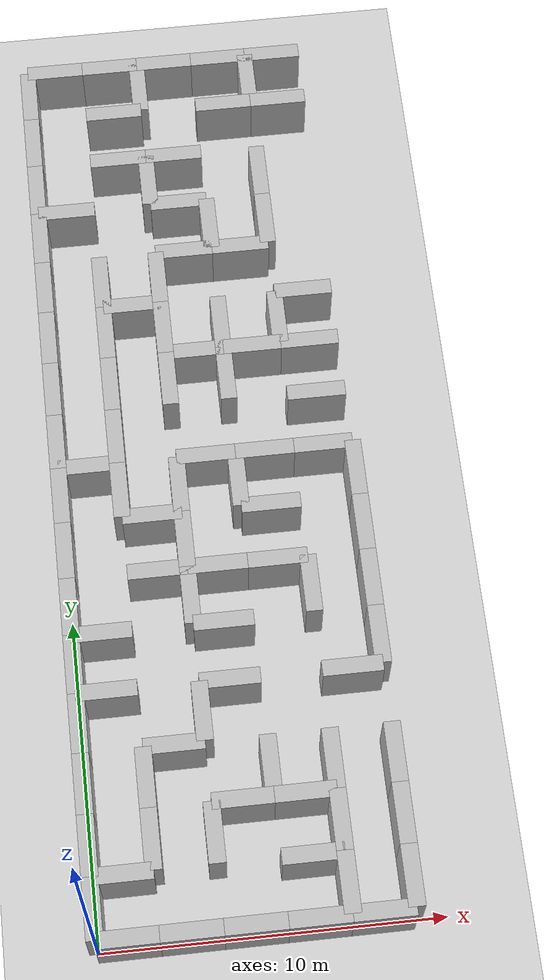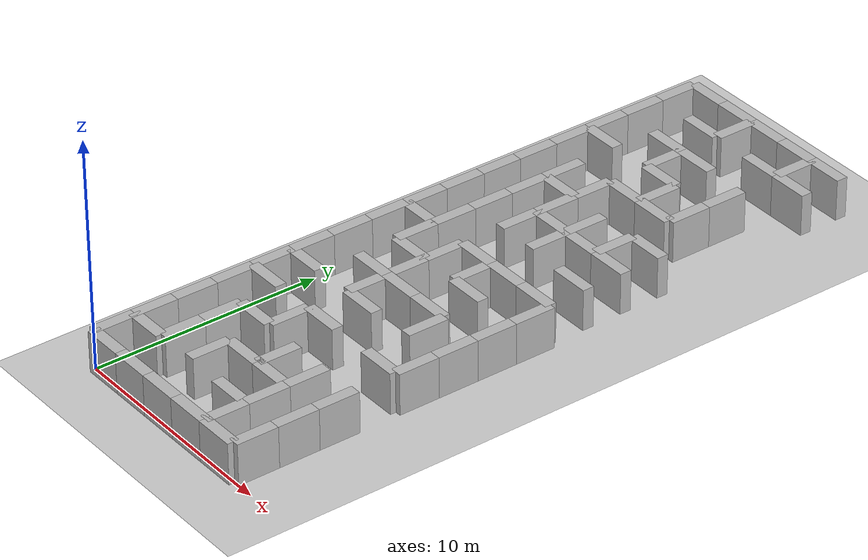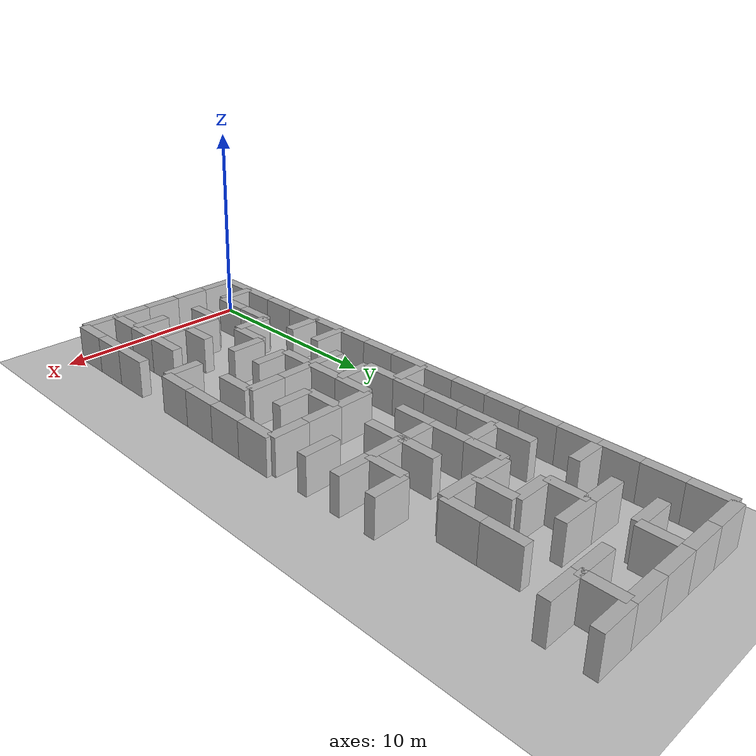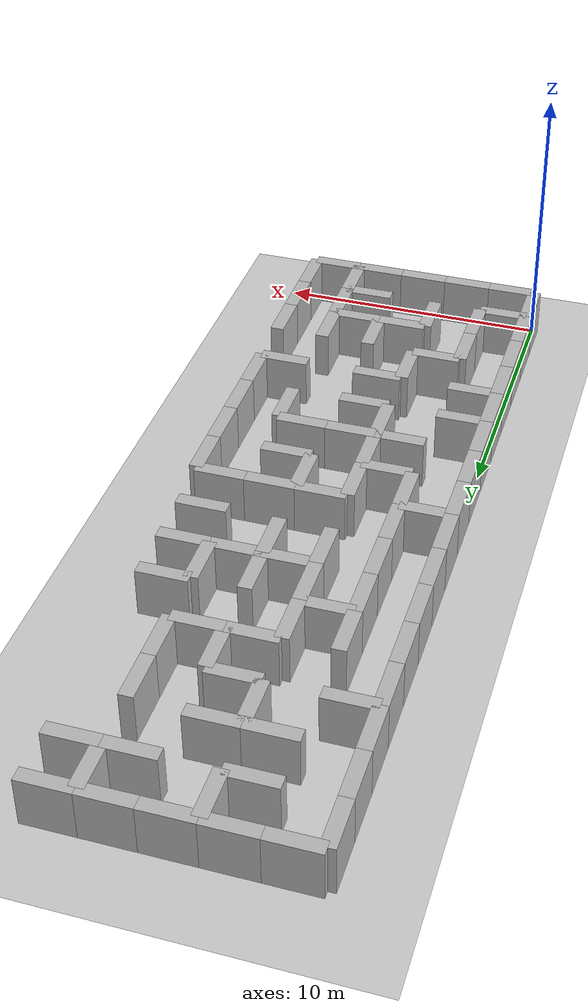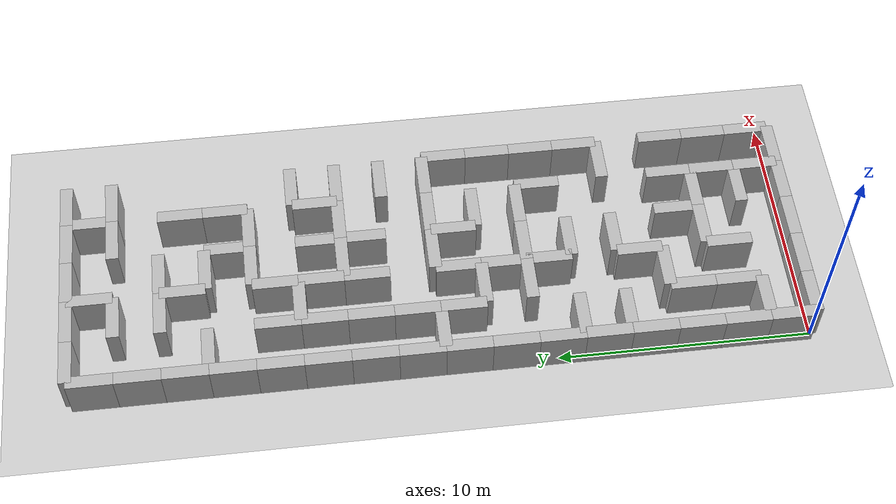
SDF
<sdf version="1.6">
 <world name="default">
  <model name="ground_plane">
   <static>1</static>
   <link name="link">
    <collision name="collision">
     <geometry><plane><normal>0 0 1</normal><size>100 100</size></plane></geometry>
     <surface><friction><ode><mu>100</mu><mu2>50</mu2></ode></friction></surface>
    </collision>
    <visual name="visual">
     <cast_shadows>0</cast_shadows>
     <geometry><plane><normal>0 0 1</normal><size>100 100</size></plane></geometry>
     <material>
      <script><uri>file://media/materials/scripts/gazebo.material</uri><name>Gazebo/Grey</name></script>
     </material>
    </visual>
   </link>
  </model>
  <model name="labyrinth_wall0">
   <pose>0.900000 0.000000 0.9 0 0 0.000000</pose>
   <link name="link">
    <inertial><mass>3.0</mass></inertial>
    <collision name="collision"><geometry><box><size>1.8 0.5 1.8</size></box></geometry></collision>
    <visual name="visual"><geometry><box><size>1.8 0.5 1.8</size></box></geometry></visual>
   </link>
   <static>true</static>
  </model>
  <model name="labyrinth_wall2">
   <pose>0.000000 0.900000 0.9 0 0 1.570796</pose>
   <link name="link">
    <inertial><mass>3.0</mass></inertial>
    <collision name="collision"><geometry><box><size>1.8 0.5 1.8</size></box></geometry></collision>
    <visual name="visual"><geometry><box><size>1.8 0.5 1.8</size></box></geometry></visual>
   </link>
   <static>true</static>
  </model>
  <model name="labyrinth_wall3">
   <pose>2.700000 0.000000 0.9 0 0 0.000000</pose>
   <link name="link">
    <inertial><mass>3.0</mass></inertial>
    <collision name="collision"><geometry><box><size>1.8 0.5 1.8</size></box></geometry></collision>
    <visual name="visual"><geometry><box><size>1.8 0.5 1.8</size></box></geometry></visual>
   </link>
   <static>true</static>
  </model>
  <model name="labyrinth_wall5">
   <pose>4.500000 0.000000 0.9 0 0 0.000000</pose>
   <link name="link">
    <inertial><mass>3.0</mass></inertial>
    <collision name="collision"><geometry><box><size>1.8 0.5 1.8</size></box></geometry></collision>
    <visual name="visual"><geometry><box><size>1.8 0.5 1.8</size></box></geometry></visual>
   </link>
   <static>true</static>
  </model>
  <model name="labyrinth_wall7">
   <pose>6.300000 0.000000 0.9 0 0 0.000000</pose>
   <link name="link">
    <inertial><mass>3.0</mass></inertial>
    <collision name="collision"><geometry><box><size>1.8 0.5 1.8</size></box></geometry></collision>
    <visual name="visual"><geometry><box><size>1.8 0.5 1.8</size></box></geometry></visual>
   </link>
   <static>true</static>
  </model>
  <model name="labyrinth_wall8">
   <pose>7.200000 0.900000 0.9 0 0 1.570796</pose>
   <link name="link">
    <inertial><mass>3.0</mass></inertial>
    <collision name="collision"><geometry><box><size>1.8 0.5 1.8</size></box></geometry></collision>
    <visual name="visual"><geometry><box><size>1.8 0.5 1.8</size></box></geometry></visual>
   </link>
   <static>true</static>
  </model>
  <model name="labyrinth_wall9">
   <pose>8.100000 0.000000 0.9 0 0 0.000000</pose>
   <link name="link">
    <inertial><mass>3.0</mass></inertial>
    <collision name="collision"><geometry><box><size>1.8 0.5 1.8</size></box></geometry></collision>
    <visual name="visual"><geometry><box><size>1.8 0.5 1.8</size></box></geometry></visual>
   </link>
   <static>true</static>
  </model>
  <model name="labyrinth_wall10">
   <pose>9.000000 0.900000 0.9 0 0 1.570796</pose>
   <link name="link">
    <inertial><mass>3.0</mass></inertial>
    <collision name="collision"><geometry><box><size>1.8 0.5 1.8</size></box></geometry></collision>
    <visual name="visual"><geometry><box><size>1.8 0.5 1.8</size></box></geometry></visual>
   </link>
   <static>true</static>
  </model>
  <model name="labyrinth_wall33">
   <pose>0.900000 1.800000 0.9 0 0 0.000000</pose>
   <link name="link">
    <inertial><mass>3.0</mass></inertial>
    <collision name="collision"><geometry><box><size>1.8 0.5 1.8</size></box></geometry></collision>
    <visual name="visual"><geometry><box><size>1.8 0.5 1.8</size></box></geometry></visual>
   </link>
   <static>true</static>
  </model>
  <model name="labyrinth_wall34">
   <pose>1.800000 2.700000 0.9 0 0 1.570796</pose>
   <link name="link">
    <inertial><mass>3.0</mass></inertial>
    <collision name="collision"><geometry><box><size>1.8 0.5 1.8</size></box></geometry></collision>
    <visual name="visual"><geometry><box><size>1.8 0.5 1.8</size></box></geometry></visual>
   </link>
   <static>true</static>
  </model>
  <model name="labyrinth_wall35">
   <pose>0.000000 2.700000 0.9 0 0 1.570796</pose>
   <link name="link">
    <inertial><mass>3.0</mass></inertial>
    <collision name="collision"><geometry><box><size>1.8 0.5 1.8</size></box></geometry></collision>
    <visual name="visual"><geometry><box><size>1.8 0.5 1.8</size></box></geometry></visual>
   </link>
   <static>true</static>
  </model>
  <model name="labyrinth_wall37">
   <pose>3.600000 2.700000 0.9 0 0 1.570796</pose>
   <link name="link">
    <inertial><mass>3.0</mass></inertial>
    <collision name="collision"><geometry><box><size>1.8 0.5 1.8</size></box></geometry></collision>
    <visual name="visual"><geometry><box><size>1.8 0.5 1.8</size></box></geometry></visual>
   </link>
   <static>true</static>
  </model>
  <model name="labyrinth_wall40">
   <pose>6.300000 1.800000 0.9 0 0 0.000000</pose>
   <link name="link">
    <inertial><mass>3.0</mass></inertial>
    <collision name="collision"><geometry><box><size>1.8 0.5 1.8</size></box></geometry></collision>
    <visual name="visual"><geometry><box><size>1.8 0.5 1.8</size></box></geometry></visual>
   </link>
   <static>true</static>
  </model>
  <model name="labyrinth_wall41">
   <pose>7.200000 2.700000 0.9 0 0 1.570796</pose>
   <link name="link">
    <inertial><mass>3.0</mass></inertial>
    <collision name="collision"><geometry><box><size>1.8 0.5 1.8</size></box></geometry></collision>
    <visual name="visual"><geometry><box><size>1.8 0.5 1.8</size></box></geometry></visual>
   </link>
   <static>true</static>
  </model>
  <model name="labyrinth_wall43">
   <pose>9.000000 2.700000 0.9 0 0 1.570796</pose>
   <link name="link">
    <inertial><mass>3.0</mass></inertial>
    <collision name="collision"><geometry><box><size>1.8 0.5 1.8</size></box></geometry></collision>
    <visual name="visual"><geometry><box><size>1.8 0.5 1.8</size></box></geometry></visual>
   </link>
   <static>true</static>
  </model>
  <model name="labyrinth_wall67">
   <pose>1.800000 4.500000 0.9 0 0 1.570796</pose>
   <link name="link">
    <inertial><mass>3.0</mass></inertial>
    <collision name="collision"><geometry><box><size>1.8 0.5 1.8</size></box></geometry></collision>
    <visual name="visual"><geometry><box><size>1.8 0.5 1.8</size></box></geometry></visual>
   </link>
   <static>true</static>
  </model>
  <model name="labyrinth_wall68">
   <pose>0.000000 4.500000 0.9 0 0 1.570796</pose>
   <link name="link">
    <inertial><mass>3.0</mass></inertial>
    <collision name="collision"><geometry><box><size>1.8 0.5 1.8</size></box></geometry></collision>
    <visual name="visual"><geometry><box><size>1.8 0.5 1.8</size></box></geometry></visual>
   </link>
   <static>true</static>
  </model>
  <model name="labyrinth_wall71">
   <pose>4.500000 3.600000 0.9 0 0 0.000000</pose>
   <link name="link">
    <inertial><mass>3.0</mass></inertial>
    <collision name="collision"><geometry><box><size>1.8 0.5 1.8</size></box></geometry></collision>
    <visual name="visual"><geometry><box><size>1.8 0.5 1.8</size></box></geometry></visual>
   </link>
   <static>true</static>
  </model>
  <model name="labyrinth_wall72">
   <pose>5.400000 4.500000 0.9 0 0 1.570796</pose>
   <link name="link">
    <inertial><mass>3.0</mass></inertial>
    <collision name="collision"><geometry><box><size>1.8 0.5 1.8</size></box></geometry></collision>
    <visual name="visual"><geometry><box><size>1.8 0.5 1.8</size></box></geometry></visual>
   </link>
   <static>true</static>
  </model>
  <model name="labyrinth_wall73">
   <pose>6.300000 3.600000 0.9 0 0 0.000000</pose>
   <link name="link">
    <inertial><mass>3.0</mass></inertial>
    <collision name="collision"><geometry><box><size>1.8 0.5 1.8</size></box></geometry></collision>
    <visual name="visual"><geometry><box><size>1.8 0.5 1.8</size></box></geometry></visual>
   </link>
   <static>true</static>
  </model>
  <model name="labyrinth_wall74">
   <pose>7.200000 4.500000 0.9 0 0 1.570796</pose>
   <link name="link">
    <inertial><mass>3.0</mass></inertial>
    <collision name="collision"><geometry><box><size>1.8 0.5 1.8</size></box></geometry></collision>
    <visual name="visual"><geometry><box><size>1.8 0.5 1.8</size></box></geometry></visual>
   </link>
   <static>true</static>
  </model>
  <model name="labyrinth_wall76">
   <pose>9.000000 4.500000 0.9 0 0 1.570796</pose>
   <link name="link">
    <inertial><mass>3.0</mass></inertial>
    <collision name="collision"><geometry><box><size>1.8 0.5 1.8</size></box></geometry></collision>
    <visual name="visual"><geometry><box><size>1.8 0.5 1.8</size></box></geometry></visual>
   </link>
   <static>true</static>
  </model>
  <model name="labyrinth_wall101">
   <pose>0.000000 6.300000 0.9 0 0 1.570796</pose>
   <link name="link">
    <inertial><mass>3.0</mass></inertial>
    <collision name="collision"><geometry><box><size>1.8 0.5 1.8</size></box></geometry></collision>
    <visual name="visual"><geometry><box><size>1.8 0.5 1.8</size></box></geometry></visual>
   </link>
   <static>true</static>
  </model>
  <model name="labyrinth_wall102">
   <pose>2.700000 5.400000 0.9 0 0 0.000000</pose>
   <link name="link">
    <inertial><mass>3.0</mass></inertial>
    <collision name="collision"><geometry><box><size>1.8 0.5 1.8</size></box></geometry></collision>
    <visual name="visual"><geometry><box><size>1.8 0.5 1.8</size></box></geometry></visual>
   </link>
   <static>true</static>
  </model>
  <model name="labyrinth_wall103">
   <pose>3.600000 6.300000 0.9 0 0 1.570796</pose>
   <link name="link">
    <inertial><mass>3.0</mass></inertial>
    <collision name="collision"><geometry><box><size>1.8 0.5 1.8</size></box></geometry></collision>
    <visual name="visual"><geometry><box><size>1.8 0.5 1.8</size></box></geometry></visual>
   </link>
   <static>true</static>
  </model>
  <model name="labyrinth_wall132">
   <pose>0.900000 7.200000 0.9 0 0 0.000000</pose>
   <link name="link">
    <inertial><mass>3.0</mass></inertial>
    <collision name="collision"><geometry><box><size>1.8 0.5 1.8</size></box></geometry></collision>
    <visual name="visual"><geometry><box><size>1.8 0.5 1.8</size></box></geometry></visual>
   </link>
   <static>true</static>
  </model>
  <model name="labyrinth_wall134">
   <pose>0.000000 8.100000 0.9 0 0 1.570796</pose>
   <link name="link">
    <inertial><mass>3.0</mass></inertial>
    <collision name="collision"><geometry><box><size>1.8 0.5 1.8</size></box></geometry></collision>
    <visual name="visual"><geometry><box><size>1.8 0.5 1.8</size></box></geometry></visual>
   </link>
   <static>true</static>
  </model>
  <model name="labyrinth_wall137">
   <pose>4.500000 7.200000 0.9 0 0 0.000000</pose>
   <link name="link">
    <inertial><mass>3.0</mass></inertial>
    <collision name="collision"><geometry><box><size>1.8 0.5 1.8</size></box></geometry></collision>
    <visual name="visual"><geometry><box><size>1.8 0.5 1.8</size></box></geometry></visual>
   </link>
   <static>true</static>
  </model>
  <model name="labyrinth_wall141">
   <pose>8.100000 7.200000 0.9 0 0 0.000000</pose>
   <link name="link">
    <inertial><mass>3.0</mass></inertial>
    <collision name="collision"><geometry><box><size>1.8 0.5 1.8</size></box></geometry></collision>
    <visual name="visual"><geometry><box><size>1.8 0.5 1.8</size></box></geometry></visual>
   </link>
   <static>true</static>
  </model>
  <model name="labyrinth_wall142">
   <pose>9.000000 8.100000 0.9 0 0 1.570796</pose>
   <link name="link">
    <inertial><mass>3.0</mass></inertial>
    <collision name="collision"><geometry><box><size>1.8 0.5 1.8</size></box></geometry></collision>
    <visual name="visual"><geometry><box><size>1.8 0.5 1.8</size></box></geometry></visual>
   </link>
   <static>true</static>
  </model>
  <model name="labyrinth_wall165">
   <pose>0.900000 9.000000 0.9 0 0 0.000000</pose>
   <link name="link">
    <inertial><mass>3.0</mass></inertial>
    <collision name="collision"><geometry><box><size>1.8 0.5 1.8</size></box></geometry></collision>
    <visual name="visual"><geometry><box><size>1.8 0.5 1.8</size></box></geometry></visual>
   </link>
   <static>true</static>
  </model>
  <model name="labyrinth_wall167">
   <pose>0.000000 9.900000 0.9 0 0 1.570796</pose>
   <link name="link">
    <inertial><mass>3.0</mass></inertial>
    <collision name="collision"><geometry><box><size>1.8 0.5 1.8</size></box></geometry></collision>
    <visual name="visual"><geometry><box><size>1.8 0.5 1.8</size></box></geometry></visual>
   </link>
   <static>true</static>
  </model>
  <model name="labyrinth_wall169">
   <pose>3.600000 9.900000 0.9 0 0 1.570796</pose>
   <link name="link">
    <inertial><mass>3.0</mass></inertial>
    <collision name="collision"><geometry><box><size>1.8 0.5 1.8</size></box></geometry></collision>
    <visual name="visual"><geometry><box><size>1.8 0.5 1.8</size></box></geometry></visual>
   </link>
   <static>true</static>
  </model>
  <model name="labyrinth_wall170">
   <pose>4.500000 9.000000 0.9 0 0 0.000000</pose>
   <link name="link">
    <inertial><mass>3.0</mass></inertial>
    <collision name="collision"><geometry><box><size>1.8 0.5 1.8</size></box></geometry></collision>
    <visual name="visual"><geometry><box><size>1.8 0.5 1.8</size></box></geometry></visual>
   </link>
   <static>true</static>
  </model>
  <model name="labyrinth_wall173">
   <pose>7.200000 9.900000 0.9 0 0 1.570796</pose>
   <link name="link">
    <inertial><mass>3.0</mass></inertial>
    <collision name="collision"><geometry><box><size>1.8 0.5 1.8</size></box></geometry></collision>
    <visual name="visual"><geometry><box><size>1.8 0.5 1.8</size></box></geometry></visual>
   </link>
   <static>true</static>
  </model>
  <model name="labyrinth_wall175">
   <pose>9.000000 9.900000 0.9 0 0 1.570796</pose>
   <link name="link">
    <inertial><mass>3.0</mass></inertial>
    <collision name="collision"><geometry><box><size>1.8 0.5 1.8</size></box></geometry></collision>
    <visual name="visual"><geometry><box><size>1.8 0.5 1.8</size></box></geometry></visual>
   </link>
   <static>true</static>
  </model>
  <model name="labyrinth_wall200">
   <pose>0.000000 11.700000 0.9 0 0 1.570796</pose>
   <link name="link">
    <inertial><mass>3.0</mass></inertial>
    <collision name="collision"><geometry><box><size>1.8 0.5 1.8</size></box></geometry></collision>
    <visual name="visual"><geometry><box><size>1.8 0.5 1.8</size></box></geometry></visual>
   </link>
   <static>true</static>
  </model>
  <model name="labyrinth_wall201">
   <pose>2.700000 10.800000 0.9 0 0 0.000000</pose>
   <link name="link">
    <inertial><mass>3.0</mass></inertial>
    <collision name="collision"><geometry><box><size>1.8 0.5 1.8</size></box></geometry></collision>
    <visual name="visual"><geometry><box><size>1.8 0.5 1.8</size></box></geometry></visual>
   </link>
   <static>true</static>
  </model>
  <model name="labyrinth_wall202">
   <pose>3.600000 11.700000 0.9 0 0 1.570796</pose>
   <link name="link">
    <inertial><mass>3.0</mass></inertial>
    <collision name="collision"><geometry><box><size>1.8 0.5 1.8</size></box></geometry></collision>
    <visual name="visual"><geometry><box><size>1.8 0.5 1.8</size></box></geometry></visual>
   </link>
   <static>true</static>
  </model>
  <model name="labyrinth_wall203">
   <pose>4.500000 10.800000 0.9 0 0 0.000000</pose>
   <link name="link">
    <inertial><mass>3.0</mass></inertial>
    <collision name="collision"><geometry><box><size>1.8 0.5 1.8</size></box></geometry></collision>
    <visual name="visual"><geometry><box><size>1.8 0.5 1.8</size></box></geometry></visual>
   </link>
   <static>true</static>
  </model>
  <model name="labyrinth_wall205">
   <pose>6.300000 10.800000 0.9 0 0 0.000000</pose>
   <link name="link">
    <inertial><mass>3.0</mass></inertial>
    <collision name="collision"><geometry><box><size>1.8 0.5 1.8</size></box></geometry></collision>
    <visual name="visual"><geometry><box><size>1.8 0.5 1.8</size></box></geometry></visual>
   </link>
   <static>true</static>
  </model>
  <model name="labyrinth_wall208">
   <pose>9.000000 11.700000 0.9 0 0 1.570796</pose>
   <link name="link">
    <inertial><mass>3.0</mass></inertial>
    <collision name="collision"><geometry><box><size>1.8 0.5 1.8</size></box></geometry></collision>
    <visual name="visual"><geometry><box><size>1.8 0.5 1.8</size></box></geometry></visual>
   </link>
   <static>true</static>
  </model>
  <model name="labyrinth_wall232">
   <pose>1.800000 13.500000 0.9 0 0 1.570796</pose>
   <link name="link">
    <inertial><mass>3.0</mass></inertial>
    <collision name="collision"><geometry><box><size>1.8 0.5 1.8</size></box></geometry></collision>
    <visual name="visual"><geometry><box><size>1.8 0.5 1.8</size></box></geometry></visual>
   </link>
   <static>true</static>
  </model>
  <model name="labyrinth_wall233">
   <pose>0.000000 13.500000 0.9 0 0 1.570796</pose>
   <link name="link">
    <inertial><mass>3.0</mass></inertial>
    <collision name="collision"><geometry><box><size>1.8 0.5 1.8</size></box></geometry></collision>
    <visual name="visual"><geometry><box><size>1.8 0.5 1.8</size></box></geometry></visual>
   </link>
   <static>true</static>
  </model>
  <model name="labyrinth_wall234">
   <pose>2.700000 12.600000 0.9 0 0 0.000000</pose>
   <link name="link">
    <inertial><mass>3.0</mass></inertial>
    <collision name="collision"><geometry><box><size>1.8 0.5 1.8</size></box></geometry></collision>
    <visual name="visual"><geometry><box><size>1.8 0.5 1.8</size></box></geometry></visual>
   </link>
   <static>true</static>
  </model>
  <model name="labyrinth_wall235">
   <pose>3.600000 13.500000 0.9 0 0 1.570796</pose>
   <link name="link">
    <inertial><mass>3.0</mass></inertial>
    <collision name="collision"><geometry><box><size>1.8 0.5 1.8</size></box></geometry></collision>
    <visual name="visual"><geometry><box><size>1.8 0.5 1.8</size></box></geometry></visual>
   </link>
   <static>true</static>
  </model>
  <model name="labyrinth_wall237">
   <pose>5.400000 13.500000 0.9 0 0 1.570796</pose>
   <link name="link">
    <inertial><mass>3.0</mass></inertial>
    <collision name="collision"><geometry><box><size>1.8 0.5 1.8</size></box></geometry></collision>
    <visual name="visual"><geometry><box><size>1.8 0.5 1.8</size></box></geometry></visual>
   </link>
   <static>true</static>
  </model>
  <model name="labyrinth_wall238">
   <pose>6.300000 12.600000 0.9 0 0 0.000000</pose>
   <link name="link">
    <inertial><mass>3.0</mass></inertial>
    <collision name="collision"><geometry><box><size>1.8 0.5 1.8</size></box></geometry></collision>
    <visual name="visual"><geometry><box><size>1.8 0.5 1.8</size></box></geometry></visual>
   </link>
   <static>true</static>
  </model>
  <model name="labyrinth_wall241">
   <pose>9.000000 13.500000 0.9 0 0 1.570796</pose>
   <link name="link">
    <inertial><mass>3.0</mass></inertial>
    <collision name="collision"><geometry><box><size>1.8 0.5 1.8</size></box></geometry></collision>
    <visual name="visual"><geometry><box><size>1.8 0.5 1.8</size></box></geometry></visual>
   </link>
   <static>true</static>
  </model>
  <model name="labyrinth_wall264">
   <pose>0.900000 14.400000 0.9 0 0 0.000000</pose>
   <link name="link">
    <inertial><mass>3.0</mass></inertial>
    <collision name="collision"><geometry><box><size>1.8 0.5 1.8</size></box></geometry></collision>
    <visual name="visual"><geometry><box><size>1.8 0.5 1.8</size></box></geometry></visual>
   </link>
   <static>true</static>
  </model>
  <model name="labyrinth_wall265">
   <pose>1.800000 15.300000 0.9 0 0 1.570796</pose>
   <link name="link">
    <inertial><mass>3.0</mass></inertial>
    <collision name="collision"><geometry><box><size>1.8 0.5 1.8</size></box></geometry></collision>
    <visual name="visual"><geometry><box><size>1.8 0.5 1.8</size></box></geometry></visual>
   </link>
   <static>true</static>
  </model>
  <model name="labyrinth_wall266">
   <pose>0.000000 15.300000 0.9 0 0 1.570796</pose>
   <link name="link">
    <inertial><mass>3.0</mass></inertial>
    <collision name="collision"><geometry><box><size>1.8 0.5 1.8</size></box></geometry></collision>
    <visual name="visual"><geometry><box><size>1.8 0.5 1.8</size></box></geometry></visual>
   </link>
   <static>true</static>
  </model>
  <model name="labyrinth_wall269">
   <pose>4.500000 14.400000 0.9 0 0 0.000000</pose>
   <link name="link">
    <inertial><mass>3.0</mass></inertial>
    <collision name="collision"><geometry><box><size>1.8 0.5 1.8</size></box></geometry></collision>
    <visual name="visual"><geometry><box><size>1.8 0.5 1.8</size></box></geometry></visual>
   </link>
   <static>true</static>
  </model>
  <model name="labyrinth_wall271">
   <pose>6.300000 14.400000 0.9 0 0 0.000000</pose>
   <link name="link">
    <inertial><mass>3.0</mass></inertial>
    <collision name="collision"><geometry><box><size>1.8 0.5 1.8</size></box></geometry></collision>
    <visual name="visual"><geometry><box><size>1.8 0.5 1.8</size></box></geometry></visual>
   </link>
   <static>true</static>
  </model>
  <model name="labyrinth_wall273">
   <pose>8.100000 14.400000 0.9 0 0 0.000000</pose>
   <link name="link">
    <inertial><mass>3.0</mass></inertial>
    <collision name="collision"><geometry><box><size>1.8 0.5 1.8</size></box></geometry></collision>
    <visual name="visual"><geometry><box><size>1.8 0.5 1.8</size></box></geometry></visual>
   </link>
   <static>true</static>
  </model>
  <model name="labyrinth_wall298">
   <pose>1.800000 17.100000 0.9 0 0 1.570796</pose>
   <link name="link">
    <inertial><mass>3.0</mass></inertial>
    <collision name="collision"><geometry><box><size>1.8 0.5 1.8</size></box></geometry></collision>
    <visual name="visual"><geometry><box><size>1.8 0.5 1.8</size></box></geometry></visual>
   </link>
   <static>true</static>
  </model>
  <model name="labyrinth_wall299">
   <pose>0.000000 17.100000 0.9 0 0 1.570796</pose>
   <link name="link">
    <inertial><mass>3.0</mass></inertial>
    <collision name="collision"><geometry><box><size>1.8 0.5 1.8</size></box></geometry></collision>
    <visual name="visual"><geometry><box><size>1.8 0.5 1.8</size></box></geometry></visual>
   </link>
   <static>true</static>
  </model>
  <model name="labyrinth_wall301">
   <pose>3.600000 17.100000 0.9 0 0 1.570796</pose>
   <link name="link">
    <inertial><mass>3.0</mass></inertial>
    <collision name="collision"><geometry><box><size>1.8 0.5 1.8</size></box></geometry></collision>
    <visual name="visual"><geometry><box><size>1.8 0.5 1.8</size></box></geometry></visual>
   </link>
   <static>true</static>
  </model>
  <model name="labyrinth_wall303">
   <pose>5.400000 17.100000 0.9 0 0 1.570796</pose>
   <link name="link">
    <inertial><mass>3.0</mass></inertial>
    <collision name="collision"><geometry><box><size>1.8 0.5 1.8</size></box></geometry></collision>
    <visual name="visual"><geometry><box><size>1.8 0.5 1.8</size></box></geometry></visual>
   </link>
   <static>true</static>
  </model>
  <model name="labyrinth_wall306">
   <pose>8.100000 16.200001 0.9 0 0 0.000000</pose>
   <link name="link">
    <inertial><mass>3.0</mass></inertial>
    <collision name="collision"><geometry><box><size>1.8 0.5 1.8</size></box></geometry></collision>
    <visual name="visual"><geometry><box><size>1.8 0.5 1.8</size></box></geometry></visual>
   </link>
   <static>true</static>
  </model>
  <model name="labyrinth_wall331">
   <pose>1.800000 18.900000 0.9 0 0 1.570796</pose>
   <link name="link">
    <inertial><mass>3.0</mass></inertial>
    <collision name="collision"><geometry><box><size>1.8 0.5 1.8</size></box></geometry></collision>
    <visual name="visual"><geometry><box><size>1.8 0.5 1.8</size></box></geometry></visual>
   </link>
   <static>true</static>
  </model>
  <model name="labyrinth_wall332">
   <pose>0.000000 18.900000 0.9 0 0 1.570796</pose>
   <link name="link">
    <inertial><mass>3.0</mass></inertial>
    <collision name="collision"><geometry><box><size>1.8 0.5 1.8</size></box></geometry></collision>
    <visual name="visual"><geometry><box><size>1.8 0.5 1.8</size></box></geometry></visual>
   </link>
   <static>true</static>
  </model>
  <model name="labyrinth_wall334">
   <pose>3.600000 18.900000 0.9 0 0 1.570796</pose>
   <link name="link">
    <inertial><mass>3.0</mass></inertial>
    <collision name="collision"><geometry><box><size>1.8 0.5 1.8</size></box></geometry></collision>
    <visual name="visual"><geometry><box><size>1.8 0.5 1.8</size></box></geometry></visual>
   </link>
   <static>true</static>
  </model>
  <model name="labyrinth_wall335">
   <pose>4.500000 18.000000 0.9 0 0 0.000000</pose>
   <link name="link">
    <inertial><mass>3.0</mass></inertial>
    <collision name="collision"><geometry><box><size>1.8 0.5 1.8</size></box></geometry></collision>
    <visual name="visual"><geometry><box><size>1.8 0.5 1.8</size></box></geometry></visual>
   </link>
   <static>true</static>
  </model>
  <model name="labyrinth_wall336">
   <pose>5.400000 18.900000 0.9 0 0 1.570796</pose>
   <link name="link">
    <inertial><mass>3.0</mass></inertial>
    <collision name="collision"><geometry><box><size>1.8 0.5 1.8</size></box></geometry></collision>
    <visual name="visual"><geometry><box><size>1.8 0.5 1.8</size></box></geometry></visual>
   </link>
   <static>true</static>
  </model>
  <model name="labyrinth_wall337">
   <pose>6.300000 18.000000 0.9 0 0 0.000000</pose>
   <link name="link">
    <inertial><mass>3.0</mass></inertial>
    <collision name="collision"><geometry><box><size>1.8 0.5 1.8</size></box></geometry></collision>
    <visual name="visual"><geometry><box><size>1.8 0.5 1.8</size></box></geometry></visual>
   </link>
   <static>true</static>
  </model>
  <model name="labyrinth_wall338">
   <pose>7.200000 18.900000 0.9 0 0 1.570796</pose>
   <link name="link">
    <inertial><mass>3.0</mass></inertial>
    <collision name="collision"><geometry><box><size>1.8 0.5 1.8</size></box></geometry></collision>
    <visual name="visual"><geometry><box><size>1.8 0.5 1.8</size></box></geometry></visual>
   </link>
   <static>true</static>
  </model>
  <model name="labyrinth_wall339">
   <pose>8.100000 18.000000 0.9 0 0 0.000000</pose>
   <link name="link">
    <inertial><mass>3.0</mass></inertial>
    <collision name="collision"><geometry><box><size>1.8 0.5 1.8</size></box></geometry></collision>
    <visual name="visual"><geometry><box><size>1.8 0.5 1.8</size></box></geometry></visual>
   </link>
   <static>true</static>
  </model>
  <model name="labyrinth_wall364">
   <pose>1.800000 20.700001 0.9 0 0 1.570796</pose>
   <link name="link">
    <inertial><mass>3.0</mass></inertial>
    <collision name="collision"><geometry><box><size>1.8 0.5 1.8</size></box></geometry></collision>
    <visual name="visual"><geometry><box><size>1.8 0.5 1.8</size></box></geometry></visual>
   </link>
   <static>true</static>
  </model>
  <model name="labyrinth_wall365">
   <pose>0.000000 20.700001 0.9 0 0 1.570796</pose>
   <link name="link">
    <inertial><mass>3.0</mass></inertial>
    <collision name="collision"><geometry><box><size>1.8 0.5 1.8</size></box></geometry></collision>
    <visual name="visual"><geometry><box><size>1.8 0.5 1.8</size></box></geometry></visual>
   </link>
   <static>true</static>
  </model>
  <model name="labyrinth_wall366">
   <pose>2.700000 19.799999 0.9 0 0 0.000000</pose>
   <link name="link">
    <inertial><mass>3.0</mass></inertial>
    <collision name="collision"><geometry><box><size>1.8 0.5 1.8</size></box></geometry></collision>
    <visual name="visual"><geometry><box><size>1.8 0.5 1.8</size></box></geometry></visual>
   </link>
   <static>true</static>
  </model>
  <model name="labyrinth_wall367">
   <pose>3.600000 20.700001 0.9 0 0 1.570796</pose>
   <link name="link">
    <inertial><mass>3.0</mass></inertial>
    <collision name="collision"><geometry><box><size>1.8 0.5 1.8</size></box></geometry></collision>
    <visual name="visual"><geometry><box><size>1.8 0.5 1.8</size></box></geometry></visual>
   </link>
   <static>true</static>
  </model>
  <model name="labyrinth_wall372">
   <pose>8.100000 19.799999 0.9 0 0 0.000000</pose>
   <link name="link">
    <inertial><mass>3.0</mass></inertial>
    <collision name="collision"><geometry><box><size>1.8 0.5 1.8</size></box></geometry></collision>
    <visual name="visual"><geometry><box><size>1.8 0.5 1.8</size></box></geometry></visual>
   </link>
   <static>true</static>
  </model>
  <model name="labyrinth_wall398">
   <pose>0.000000 22.500000 0.9 0 0 1.570796</pose>
   <link name="link">
    <inertial><mass>3.0</mass></inertial>
    <collision name="collision"><geometry><box><size>1.8 0.5 1.8</size></box></geometry></collision>
    <visual name="visual"><geometry><box><size>1.8 0.5 1.8</size></box></geometry></visual>
   </link>
   <static>true</static>
  </model>
  <model name="labyrinth_wall401">
   <pose>4.500000 21.600000 0.9 0 0 0.000000</pose>
   <link name="link">
    <inertial><mass>3.0</mass></inertial>
    <collision name="collision"><geometry><box><size>1.8 0.5 1.8</size></box></geometry></collision>
    <visual name="visual"><geometry><box><size>1.8 0.5 1.8</size></box></geometry></visual>
   </link>
   <static>true</static>
  </model>
  <model name="labyrinth_wall402">
   <pose>5.400000 22.500000 0.9 0 0 1.570796</pose>
   <link name="link">
    <inertial><mass>3.0</mass></inertial>
    <collision name="collision"><geometry><box><size>1.8 0.5 1.8</size></box></geometry></collision>
    <visual name="visual"><geometry><box><size>1.8 0.5 1.8</size></box></geometry></visual>
   </link>
   <static>true</static>
  </model>
  <model name="labyrinth_wall403">
   <pose>6.300000 21.600000 0.9 0 0 0.000000</pose>
   <link name="link">
    <inertial><mass>3.0</mass></inertial>
    <collision name="collision"><geometry><box><size>1.8 0.5 1.8</size></box></geometry></collision>
    <visual name="visual"><geometry><box><size>1.8 0.5 1.8</size></box></geometry></visual>
   </link>
   <static>true</static>
  </model>
  <model name="labyrinth_wall404">
   <pose>7.200000 22.500000 0.9 0 0 1.570796</pose>
   <link name="link">
    <inertial><mass>3.0</mass></inertial>
    <collision name="collision"><geometry><box><size>1.8 0.5 1.8</size></box></geometry></collision>
    <visual name="visual"><geometry><box><size>1.8 0.5 1.8</size></box></geometry></visual>
   </link>
   <static>true</static>
  </model>
  <model name="labyrinth_wall429">
   <pose>0.900000 23.400000 0.9 0 0 0.000000</pose>
   <link name="link">
    <inertial><mass>3.0</mass></inertial>
    <collision name="collision"><geometry><box><size>1.8 0.5 1.8</size></box></geometry></collision>
    <visual name="visual"><geometry><box><size>1.8 0.5 1.8</size></box></geometry></visual>
   </link>
   <static>true</static>
  </model>
  <model name="labyrinth_wall431">
   <pose>0.000000 24.299999 0.9 0 0 1.570796</pose>
   <link name="link">
    <inertial><mass>3.0</mass></inertial>
    <collision name="collision"><geometry><box><size>1.8 0.5 1.8</size></box></geometry></collision>
    <visual name="visual"><geometry><box><size>1.8 0.5 1.8</size></box></geometry></visual>
   </link>
   <static>true</static>
  </model>
  <model name="labyrinth_wall433">
   <pose>3.600000 24.299999 0.9 0 0 1.570796</pose>
   <link name="link">
    <inertial><mass>3.0</mass></inertial>
    <collision name="collision"><geometry><box><size>1.8 0.5 1.8</size></box></geometry></collision>
    <visual name="visual"><geometry><box><size>1.8 0.5 1.8</size></box></geometry></visual>
   </link>
   <static>true</static>
  </model>
  <model name="labyrinth_wall434">
   <pose>4.500000 23.400000 0.9 0 0 0.000000</pose>
   <link name="link">
    <inertial><mass>3.0</mass></inertial>
    <collision name="collision"><geometry><box><size>1.8 0.5 1.8</size></box></geometry></collision>
    <visual name="visual"><geometry><box><size>1.8 0.5 1.8</size></box></geometry></visual>
   </link>
   <static>true</static>
  </model>
  <model name="labyrinth_wall437">
   <pose>7.200000 24.299999 0.9 0 0 1.570796</pose>
   <link name="link">
    <inertial><mass>3.0</mass></inertial>
    <collision name="collision"><geometry><box><size>1.8 0.5 1.8</size></box></geometry></collision>
    <visual name="visual"><geometry><box><size>1.8 0.5 1.8</size></box></geometry></visual>
   </link>
   <static>true</static>
  </model>
  <model name="labyrinth_wall464">
   <pose>0.000000 26.100000 0.9 0 0 1.570796</pose>
   <link name="link">
    <inertial><mass>3.0</mass></inertial>
    <collision name="collision"><geometry><box><size>1.8 0.5 1.8</size></box></geometry></collision>
    <visual name="visual"><geometry><box><size>1.8 0.5 1.8</size></box></geometry></visual>
   </link>
   <static>true</static>
  </model>
  <model name="labyrinth_wall465">
   <pose>2.700000 25.200001 0.9 0 0 0.000000</pose>
   <link name="link">
    <inertial><mass>3.0</mass></inertial>
    <collision name="collision"><geometry><box><size>1.8 0.5 1.8</size></box></geometry></collision>
    <visual name="visual"><geometry><box><size>1.8 0.5 1.8</size></box></geometry></visual>
   </link>
   <static>true</static>
  </model>
  <model name="labyrinth_wall467">
   <pose>4.500000 25.200001 0.9 0 0 0.000000</pose>
   <link name="link">
    <inertial><mass>3.0</mass></inertial>
    <collision name="collision"><geometry><box><size>1.8 0.5 1.8</size></box></geometry></collision>
    <visual name="visual"><geometry><box><size>1.8 0.5 1.8</size></box></geometry></visual>
   </link>
   <static>true</static>
  </model>
  <model name="labyrinth_wall497">
   <pose>0.900000 28.799999 0.9 0 0 0.000000</pose>
   <link name="link">
    <inertial><mass>3.0</mass></inertial>
    <collision name="collision"><geometry><box><size>1.8 0.5 1.8</size></box></geometry></collision>
    <visual name="visual"><geometry><box><size>1.8 0.5 1.8</size></box></geometry></visual>
   </link>
   <static>true</static>
  </model>
  <model name="labyrinth_wall498">
   <pose>0.000000 27.900000 0.9 0 0 1.570796</pose>
   <link name="link">
    <inertial><mass>3.0</mass></inertial>
    <collision name="collision"><geometry><box><size>1.8 0.5 1.8</size></box></geometry></collision>
    <visual name="visual"><geometry><box><size>1.8 0.5 1.8</size></box></geometry></visual>
   </link>
   <static>true</static>
  </model>
  <model name="labyrinth_wall499">
   <pose>2.700000 27.000000 0.9 0 0 0.000000</pose>
   <link name="link">
    <inertial><mass>3.0</mass></inertial>
    <collision name="collision"><geometry><box><size>1.8 0.5 1.8</size></box></geometry></collision>
    <visual name="visual"><geometry><box><size>1.8 0.5 1.8</size></box></geometry></visual>
   </link>
   <static>true</static>
  </model>
  <model name="labyrinth_wall500">
   <pose>3.600000 27.900000 0.9 0 0 1.570796</pose>
   <link name="link">
    <inertial><mass>3.0</mass></inertial>
    <collision name="collision"><geometry><box><size>1.8 0.5 1.8</size></box></geometry></collision>
    <visual name="visual"><geometry><box><size>1.8 0.5 1.8</size></box></geometry></visual>
   </link>
   <static>true</static>
  </model>
  <model name="labyrinth_wall501">
   <pose>2.700000 28.799999 0.9 0 0 0.000000</pose>
   <link name="link">
    <inertial><mass>3.0</mass></inertial>
    <collision name="collision"><geometry><box><size>1.8 0.5 1.8</size></box></geometry></collision>
    <visual name="visual"><geometry><box><size>1.8 0.5 1.8</size></box></geometry></visual>
   </link>
   <static>true</static>
  </model>
  <model name="labyrinth_wall504">
   <pose>4.500000 28.799999 0.9 0 0 0.000000</pose>
   <link name="link">
    <inertial><mass>3.0</mass></inertial>
    <collision name="collision"><geometry><box><size>1.8 0.5 1.8</size></box></geometry></collision>
    <visual name="visual"><geometry><box><size>1.8 0.5 1.8</size></box></geometry></visual>
   </link>
   <static>true</static>
  </model>
  <model name="labyrinth_wall505">
   <pose>6.300000 27.000000 0.9 0 0 0.000000</pose>
   <link name="link">
    <inertial><mass>3.0</mass></inertial>
    <collision name="collision"><geometry><box><size>1.8 0.5 1.8</size></box></geometry></collision>
    <visual name="visual"><geometry><box><size>1.8 0.5 1.8</size></box></geometry></visual>
   </link>
   <static>true</static>
  </model>
  <model name="labyrinth_wall506">
   <pose>7.200000 27.900000 0.9 0 0 1.570796</pose>
   <link name="link">
    <inertial><mass>3.0</mass></inertial>
    <collision name="collision"><geometry><box><size>1.8 0.5 1.8</size></box></geometry></collision>
    <visual name="visual"><geometry><box><size>1.8 0.5 1.8</size></box></geometry></visual>
   </link>
   <static>true</static>
  </model>
  <model name="labyrinth_wall507">
   <pose>6.300000 28.799999 0.9 0 0 0.000000</pose>
   <link name="link">
    <inertial><mass>3.0</mass></inertial>
    <collision name="collision"><geometry><box><size>1.8 0.5 1.8</size></box></geometry></collision>
    <visual name="visual"><geometry><box><size>1.8 0.5 1.8</size></box></geometry></visual>
   </link>
   <static>true</static>
  </model>
  <model name="labyrinth_wall508">
   <pose>8.100000 27.000000 0.9 0 0 0.000000</pose>
   <link name="link">
    <inertial><mass>3.0</mass></inertial>
    <collision name="collision"><geometry><box><size>1.8 0.5 1.8</size></box></geometry></collision>
    <visual name="visual"><geometry><box><size>1.8 0.5 1.8</size></box></geometry></visual>
   </link>
   <static>true</static>
  </model>
  <model name="labyrinth_wall510">
   <pose>8.100000 28.799999 0.9 0 0 0.000000</pose>
   <link name="link">
    <inertial><mass>3.0</mass></inertial>
    <collision name="collision"><geometry><box><size>1.8 0.5 1.8</size></box></geometry></collision>
    <visual name="visual"><geometry><box><size>1.8 0.5 1.8</size></box></geometry></visual>
   </link>
   <static>true</static>
  </model>
 </world>
</sdf>
